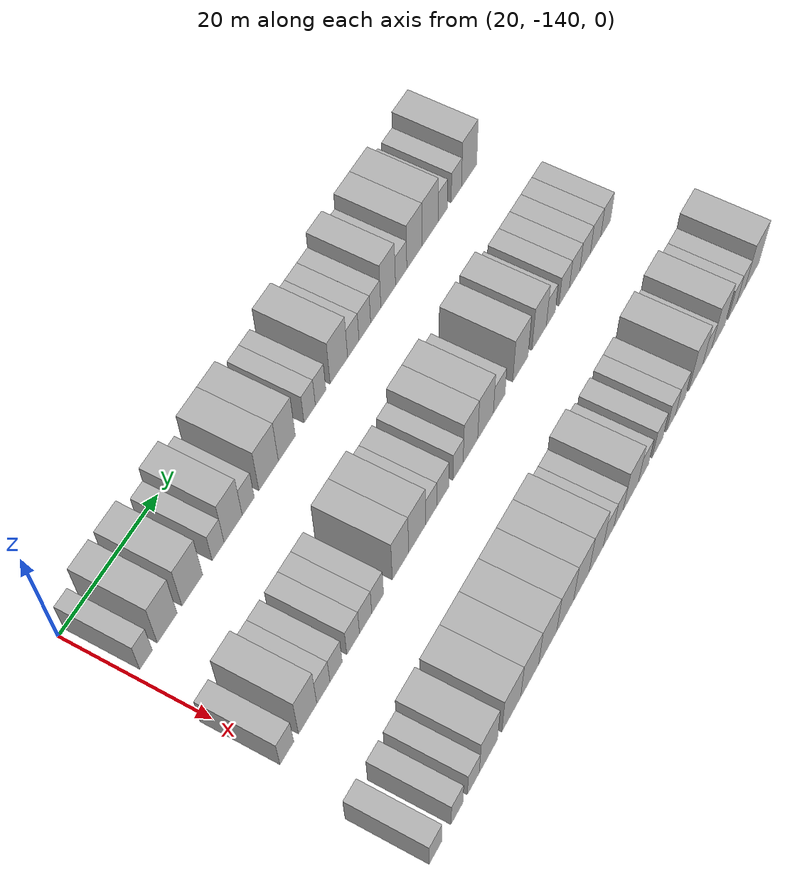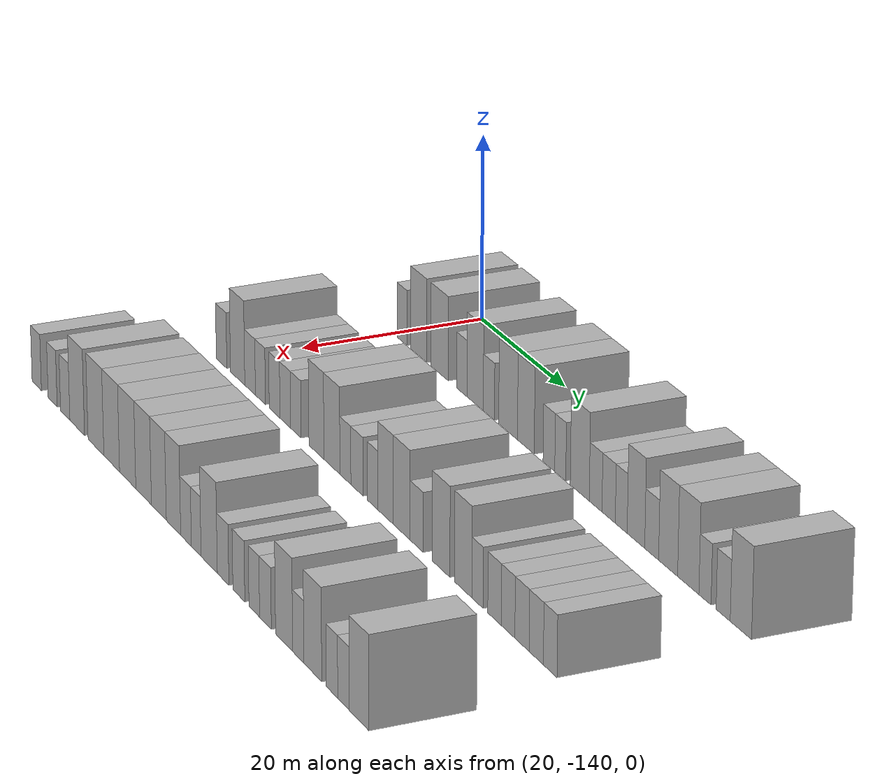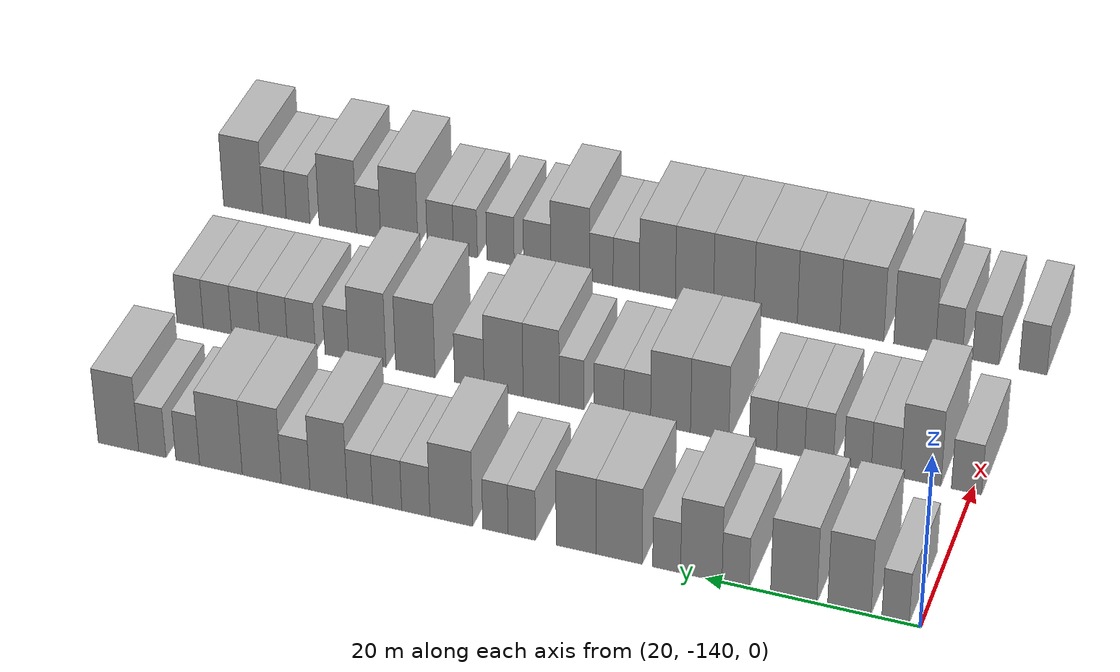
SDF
<sdf version="1.6">
 <world name="default">
  <model name="building_25">
   <static>1</static>
   <pose>25.0000 -137.6886 0 0.000000 0.000000 0.000000</pose>
   <link name="link">
    <pose>0 0 3.00 0 0 0</pose>
    <collision name="collision"><geometry><box><size>10.0000 2.5201 6.0000</size></box></geometry></collision>
    <visual name="visual">
     <cast_shadows>0</cast_shadows>
     <geometry><box><size>10.0000 2.5201 6.0000</size></box></geometry>
     <material>
      <script>
       <uri>model://HANNAS_wall/materials/scripts</uri>
       <uri>model://HANNAS_wall/materials/textures</uri>
       <name>vrc/HANNAS_wall</name>
      </script>
     </material>
    </visual>
   </link>
  </model>
  <model name="building_26">
   <static>1</static>
   <pose>25.0000 -133.4198 0 0.000000 0.000000 0.000000</pose>
   <link name="link">
    <pose>0 0 4.50 0 0 0</pose>
    <collision name="collision"><geometry><box><size>10.0000 4.0176 9.0000</size></box></geometry></collision>
    <visual name="visual">
     <cast_shadows>0</cast_shadows>
     <geometry><box><size>10.0000 4.0176 9.0000</size></box></geometry>
     <material>
      <script>
       <uri>model://HANNAS_wall/materials/scripts</uri>
       <uri>model://HANNAS_wall/materials/textures</uri>
       <name>vrc/HANNAS_wall</name>
      </script>
     </material>
    </visual>
   </link>
  </model>
  <model name="building_27">
   <static>1</static>
   <pose>25.0000 -128.2503 0 0.000000 0.000000 0.000000</pose>
   <link name="link">
    <pose>0 0 4.50 0 0 0</pose>
    <collision name="collision"><geometry><box><size>10.0000 4.3213 9.0000</size></box></geometry></collision>
    <visual name="visual">
     <cast_shadows>0</cast_shadows>
     <geometry><box><size>10.0000 4.3213 9.0000</size></box></geometry>
     <material>
      <script>
       <uri>model://HANNAS_wall/materials/scripts</uri>
       <uri>model://HANNAS_wall/materials/textures</uri>
       <name>vrc/HANNAS_wall</name>
      </script>
     </material>
    </visual>
   </link>
  </model>
  <model name="building_28">
   <static>1</static>
   <pose>25.0000 -122.8109 0 0.000000 0.000000 0.000000</pose>
   <link name="link">
    <pose>0 0 3.00 0 0 0</pose>
    <collision name="collision"><geometry><box><size>10.0000 2.5574 6.0000</size></box></geometry></collision>
    <visual name="visual">
     <cast_shadows>0</cast_shadows>
     <geometry><box><size>10.0000 2.5574 6.0000</size></box></geometry>
     <material>
      <script>
       <uri>model://HANNAS_wall/materials/scripts</uri>
       <uri>model://HANNAS_wall/materials/textures</uri>
       <name>vrc/HANNAS_wall</name>
      </script>
     </material>
    </visual>
   </link>
  </model>
  <model name="building_29">
   <static>1</static>
   <pose>25.0000 -119.5761 0 0.000000 0.000000 0.000000</pose>
   <link name="link">
    <pose>0 0 4.50 0 0 0</pose>
    <collision name="collision"><geometry><box><size>10.0000 3.9122 9.0000</size></box></geometry></collision>
    <visual name="visual">
     <cast_shadows>0</cast_shadows>
     <geometry><box><size>10.0000 3.9122 9.0000</size></box></geometry>
     <material>
      <script>
       <uri>model://HANNAS_wall/materials/scripts</uri>
       <uri>model://HANNAS_wall/materials/textures</uri>
       <name>vrc/HANNAS_wall</name>
      </script>
     </material>
    </visual>
   </link>
  </model>
  <model name="building_30">
   <static>1</static>
   <pose>25.0000 -116.2963 0 0.000000 0.000000 0.000000</pose>
   <link name="link">
    <pose>0 0 3.00 0 0 0</pose>
    <collision name="collision"><geometry><box><size>10.0000 2.6474 6.0000</size></box></geometry></collision>
    <visual name="visual">
     <cast_shadows>0</cast_shadows>
     <geometry><box><size>10.0000 2.6474 6.0000</size></box></geometry>
     <material>
      <script>
       <uri>model://HANNAS_wall/materials/scripts</uri>
       <uri>model://HANNAS_wall/materials/textures</uri>
       <name>vrc/HANNAS_wall</name>
      </script>
     </material>
    </visual>
   </link>
  </model>
  <model name="building_31">
   <static>1</static>
   <pose>25.0000 -111.7886 0 0.000000 0.000000 0.000000</pose>
   <link name="link">
    <pose>0 0 4.50 0 0 0</pose>
    <collision name="collision"><geometry><box><size>10.0000 4.3680 9.0000</size></box></geometry></collision>
    <visual name="visual">
     <cast_shadows>0</cast_shadows>
     <geometry><box><size>10.0000 4.3680 9.0000</size></box></geometry>
     <material>
      <script>
       <uri>model://HANNAS_wall/materials/scripts</uri>
       <uri>model://HANNAS_wall/materials/textures</uri>
       <name>vrc/HANNAS_wall</name>
      </script>
     </material>
    </visual>
   </link>
  </model>
  <model name="building_32">
   <static>1</static>
   <pose>25.0000 -107.6757 0 0.000000 0.000000 0.000000</pose>
   <link name="link">
    <pose>0 0 4.50 0 0 0</pose>
    <collision name="collision"><geometry><box><size>10.0000 3.8577 9.0000</size></box></geometry></collision>
    <visual name="visual">
     <cast_shadows>0</cast_shadows>
     <geometry><box><size>10.0000 3.8577 9.0000</size></box></geometry>
     <material>
      <script>
       <uri>model://HANNAS_wall/materials/scripts</uri>
       <uri>model://HANNAS_wall/materials/textures</uri>
       <name>vrc/HANNAS_wall</name>
      </script>
     </material>
    </visual>
   </link>
  </model>
  <model name="building_33">
   <static>1</static>
   <pose>25.0000 -102.4231 0 0.000000 0.000000 0.000000</pose>
   <link name="link">
    <pose>0 0 3.00 0 0 0</pose>
    <collision name="collision"><geometry><box><size>10.0000 2.6474 6.0000</size></box></geometry></collision>
    <visual name="visual">
     <cast_shadows>0</cast_shadows>
     <geometry><box><size>10.0000 2.6474 6.0000</size></box></geometry>
     <material>
      <script>
       <uri>model://HANNAS_wall/materials/scripts</uri>
       <uri>model://HANNAS_wall/materials/textures</uri>
       <name>vrc/HANNAS_wall</name>
      </script>
     </material>
    </visual>
   </link>
  </model>
  <model name="building_34">
   <static>1</static>
   <pose>25.0000 -99.8691 0 0.000000 0.000000 0.000000</pose>
   <link name="link">
    <pose>0 0 3.00 0 0 0</pose>
    <collision name="collision"><geometry><box><size>10.0000 2.4607 6.0000</size></box></geometry></collision>
    <visual name="visual">
     <cast_shadows>0</cast_shadows>
     <geometry><box><size>10.0000 2.4607 6.0000</size></box></geometry>
     <material>
      <script>
       <uri>model://HANNAS_wall/materials/scripts</uri>
       <uri>model://HANNAS_wall/materials/textures</uri>
       <name>vrc/HANNAS_wall</name>
      </script>
     </material>
    </visual>
   </link>
  </model>
  <model name="building_35">
   <static>1</static>
   <pose>25.0000 -95.5506 0 0.000000 0.000000 0.000000</pose>
   <link name="link">
    <pose>0 0 4.50 0 0 0</pose>
    <collision name="collision"><geometry><box><size>10.0000 4.1762 9.0000</size></box></geometry></collision>
    <visual name="visual">
     <cast_shadows>0</cast_shadows>
     <geometry><box><size>10.0000 4.1762 9.0000</size></box></geometry>
     <material>
      <script>
       <uri>model://HANNAS_wall/materials/scripts</uri>
       <uri>model://HANNAS_wall/materials/textures</uri>
       <name>vrc/HANNAS_wall</name>
      </script>
     </material>
    </visual>
   </link>
  </model>
  <model name="building_36">
   <static>1</static>
   <pose>25.0000 -92.0806 0 0.000000 0.000000 0.000000</pose>
   <link name="link">
    <pose>0 0 3.00 0 0 0</pose>
    <collision name="collision"><geometry><box><size>10.0000 2.7638 6.0000</size></box></geometry></collision>
    <visual name="visual">
     <cast_shadows>0</cast_shadows>
     <geometry><box><size>10.0000 2.7638 6.0000</size></box></geometry>
     <material>
      <script>
       <uri>model://HANNAS_wall/materials/scripts</uri>
       <uri>model://HANNAS_wall/materials/textures</uri>
       <name>vrc/HANNAS_wall</name>
      </script>
     </material>
    </visual>
   </link>
  </model>
  <model name="building_37">
   <static>1</static>
   <pose>25.0000 -89.2654 0 0.000000 0.000000 0.000000</pose>
   <link name="link">
    <pose>0 0 3.00 0 0 0</pose>
    <collision name="collision"><geometry><box><size>10.0000 2.8667 6.0000</size></box></geometry></collision>
    <visual name="visual">
     <cast_shadows>0</cast_shadows>
     <geometry><box><size>10.0000 2.8667 6.0000</size></box></geometry>
     <material>
      <script>
       <uri>model://HANNAS_wall/materials/scripts</uri>
       <uri>model://HANNAS_wall/materials/textures</uri>
       <name>vrc/HANNAS_wall</name>
      </script>
     </material>
    </visual>
   </link>
  </model>
  <model name="building_38">
   <static>1</static>
   <pose>25.0000 -86.5704 0 0.000000 0.000000 0.000000</pose>
   <link name="link">
    <pose>0 0 3.00 0 0 0</pose>
    <collision name="collision"><geometry><box><size>10.0000 2.5232 6.0000</size></box></geometry></collision>
    <visual name="visual">
     <cast_shadows>0</cast_shadows>
     <geometry><box><size>10.0000 2.5232 6.0000</size></box></geometry>
     <material>
      <script>
       <uri>model://HANNAS_wall/materials/scripts</uri>
       <uri>model://HANNAS_wall/materials/textures</uri>
       <name>vrc/HANNAS_wall</name>
      </script>
     </material>
    </visual>
   </link>
  </model>
  <model name="building_39">
   <static>1</static>
   <pose>25.0000 -83.4620 0 0.000000 0.000000 0.000000</pose>
   <link name="link">
    <pose>0 0 4.50 0 0 0</pose>
    <collision name="collision"><geometry><box><size>10.0000 3.6937 9.0000</size></box></geometry></collision>
    <visual name="visual">
     <cast_shadows>0</cast_shadows>
     <geometry><box><size>10.0000 3.6937 9.0000</size></box></geometry>
     <material>
      <script>
       <uri>model://HANNAS_wall/materials/scripts</uri>
       <uri>model://HANNAS_wall/materials/textures</uri>
       <name>vrc/HANNAS_wall</name>
      </script>
     </material>
    </visual>
   </link>
  </model>
  <model name="building_40">
   <static>1</static>
   <pose>25.0000 -80.1748 0 0.000000 0.000000 0.000000</pose>
   <link name="link">
    <pose>0 0 3.00 0 0 0</pose>
    <collision name="collision"><geometry><box><size>10.0000 2.8808 6.0000</size></box></geometry></collision>
    <visual name="visual">
     <cast_shadows>0</cast_shadows>
     <geometry><box><size>10.0000 2.8808 6.0000</size></box></geometry>
     <material>
      <script>
       <uri>model://HANNAS_wall/materials/scripts</uri>
       <uri>model://HANNAS_wall/materials/textures</uri>
       <name>vrc/HANNAS_wall</name>
      </script>
     </material>
    </visual>
   </link>
  </model>
  <model name="building_41">
   <static>1</static>
   <pose>25.0000 -76.7838 0 0.000000 0.000000 0.000000</pose>
   <link name="link">
    <pose>0 0 4.50 0 0 0</pose>
    <collision name="collision"><geometry><box><size>10.0000 3.9011 9.0000</size></box></geometry></collision>
    <visual name="visual">
     <cast_shadows>0</cast_shadows>
     <geometry><box><size>10.0000 3.9011 9.0000</size></box></geometry>
     <material>
      <script>
       <uri>model://HANNAS_wall/materials/scripts</uri>
       <uri>model://HANNAS_wall/materials/textures</uri>
       <name>vrc/HANNAS_wall</name>
      </script>
     </material>
    </visual>
   </link>
  </model>
  <model name="building_42">
   <static>1</static>
   <pose>25.0000 -72.6837 0 0.000000 0.000000 0.000000</pose>
   <link name="link">
    <pose>0 0 4.50 0 0 0</pose>
    <collision name="collision"><geometry><box><size>10.0000 4.2991 9.0000</size></box></geometry></collision>
    <visual name="visual">
     <cast_shadows>0</cast_shadows>
     <geometry><box><size>10.0000 4.2991 9.0000</size></box></geometry>
     <material>
      <script>
       <uri>model://HANNAS_wall/materials/scripts</uri>
       <uri>model://HANNAS_wall/materials/textures</uri>
       <name>vrc/HANNAS_wall</name>
      </script>
     </material>
    </visual>
   </link>
  </model>
  <model name="building_43">
   <static>1</static>
   <pose>25.0000 -69.3244 0 0.000000 0.000000 0.000000</pose>
   <link name="link">
    <pose>0 0 3.00 0 0 0</pose>
    <collision name="collision"><geometry><box><size>10.0000 2.4194 6.0000</size></box></geometry></collision>
    <visual name="visual">
     <cast_shadows>0</cast_shadows>
     <geometry><box><size>10.0000 2.4194 6.0000</size></box></geometry>
     <material>
      <script>
       <uri>model://HANNAS_wall/materials/scripts</uri>
       <uri>model://HANNAS_wall/materials/textures</uri>
       <name>vrc/HANNAS_wall</name>
      </script>
     </material>
    </visual>
   </link>
  </model>
  <model name="building_44">
   <static>1</static>
   <pose>25.0000 -65.7298 0 0.000000 0.000000 0.000000</pose>
   <link name="link">
    <pose>0 0 3.00 0 0 0</pose>
    <collision name="collision"><geometry><box><size>10.0000 2.7699 6.0000</size></box></geometry></collision>
    <visual name="visual">
     <cast_shadows>0</cast_shadows>
     <geometry><box><size>10.0000 2.7699 6.0000</size></box></geometry>
     <material>
      <script>
       <uri>model://HANNAS_wall/materials/scripts</uri>
       <uri>model://HANNAS_wall/materials/textures</uri>
       <name>vrc/HANNAS_wall</name>
      </script>
     </material>
    </visual>
   </link>
  </model>
  <model name="building_45">
   <static>1</static>
   <pose>25.0000 -62.2742 0 0.000000 0.000000 0.000000</pose>
   <link name="link">
    <pose>0 0 4.50 0 0 0</pose>
    <collision name="collision"><geometry><box><size>10.0000 4.1415 9.0000</size></box></geometry></collision>
    <visual name="visual">
     <cast_shadows>0</cast_shadows>
     <geometry><box><size>10.0000 4.1415 9.0000</size></box></geometry>
     <material>
      <script>
       <uri>model://HANNAS_wall/materials/scripts</uri>
       <uri>model://HANNAS_wall/materials/textures</uri>
       <name>vrc/HANNAS_wall</name>
      </script>
     </material>
    </visual>
   </link>
  </model>
  <model name="building_138">
   <static>1</static>
   <pose>44.0000 -139.4248 0 0.000000 0.000000 0.000000</pose>
   <link name="link">
    <pose>0 0 3.00 0 0 0</pose>
    <collision name="collision"><geometry><box><size>10.0000 2.8710 6.0000</size></box></geometry></collision>
    <visual name="visual">
     <cast_shadows>0</cast_shadows>
     <geometry><box><size>10.0000 2.8710 6.0000</size></box></geometry>
     <material>
      <script>
       <uri>model://HANNAS_wall/materials/scripts</uri>
       <uri>model://HANNAS_wall/materials/textures</uri>
       <name>vrc/HANNAS_wall</name>
      </script>
     </material>
    </visual>
   </link>
  </model>
  <model name="building_139">
   <static>1</static>
   <pose>44.0000 -135.0571 0 0.000000 0.000000 0.000000</pose>
   <link name="link">
    <pose>0 0 4.50 0 0 0</pose>
    <collision name="collision"><geometry><box><size>10.0000 3.8643 9.0000</size></box></geometry></collision>
    <visual name="visual">
     <cast_shadows>0</cast_shadows>
     <geometry><box><size>10.0000 3.8643 9.0000</size></box></geometry>
     <material>
      <script>
       <uri>model://HANNAS_wall/materials/scripts</uri>
       <uri>model://HANNAS_wall/materials/textures</uri>
       <name>vrc/HANNAS_wall</name>
      </script>
     </material>
    </visual>
   </link>
  </model>
  <model name="building_140">
   <static>1</static>
   <pose>44.0000 -131.7102 0 0.000000 0.000000 0.000000</pose>
   <link name="link">
    <pose>0 0 3.00 0 0 0</pose>
    <collision name="collision"><geometry><box><size>10.0000 2.8294 6.0000</size></box></geometry></collision>
    <visual name="visual">
     <cast_shadows>0</cast_shadows>
     <geometry><box><size>10.0000 2.8294 6.0000</size></box></geometry>
     <material>
      <script>
       <uri>model://HANNAS_wall/materials/scripts</uri>
       <uri>model://HANNAS_wall/materials/textures</uri>
       <name>vrc/HANNAS_wall</name>
      </script>
     </material>
    </visual>
   </link>
  </model>
  <model name="building_141">
   <static>1</static>
   <pose>44.0000 -128.9703 0 0.000000 0.000000 0.000000</pose>
   <link name="link">
    <pose>0 0 3.00 0 0 0</pose>
    <collision name="collision"><geometry><box><size>10.0000 2.6505 6.0000</size></box></geometry></collision>
    <visual name="visual">
     <cast_shadows>0</cast_shadows>
     <geometry><box><size>10.0000 2.6505 6.0000</size></box></geometry>
     <material>
      <script>
       <uri>model://HANNAS_wall/materials/scripts</uri>
       <uri>model://HANNAS_wall/materials/textures</uri>
       <name>vrc/HANNAS_wall</name>
      </script>
     </material>
    </visual>
   </link>
  </model>
  <model name="building_142">
   <static>1</static>
   <pose>44.0000 -125.2387 0 0.000000 0.000000 0.000000</pose>
   <link name="link">
    <pose>0 0 3.00 0 0 0</pose>
    <collision name="collision"><geometry><box><size>10.0000 2.8126 6.0000</size></box></geometry></collision>
    <visual name="visual">
     <cast_shadows>0</cast_shadows>
     <geometry><box><size>10.0000 2.8126 6.0000</size></box></geometry>
     <material>
      <script>
       <uri>model://HANNAS_wall/materials/scripts</uri>
       <uri>model://HANNAS_wall/materials/textures</uri>
       <name>vrc/HANNAS_wall</name>
      </script>
     </material>
    </visual>
   </link>
  </model>
  <model name="building_143">
   <static>1</static>
   <pose>44.0000 -122.4614 0 0.000000 0.000000 0.000000</pose>
   <link name="link">
    <pose>0 0 3.00 0 0 0</pose>
    <collision name="collision"><geometry><box><size>10.0000 2.7420 6.0000</size></box></geometry></collision>
    <visual name="visual">
     <cast_shadows>0</cast_shadows>
     <geometry><box><size>10.0000 2.7420 6.0000</size></box></geometry>
     <material>
      <script>
       <uri>model://HANNAS_wall/materials/scripts</uri>
       <uri>model://HANNAS_wall/materials/textures</uri>
       <name>vrc/HANNAS_wall</name>
      </script>
     </material>
    </visual>
   </link>
  </model>
  <model name="building_144">
   <static>1</static>
   <pose>44.0000 -119.7532 0 0.000000 0.000000 0.000000</pose>
   <link name="link">
    <pose>0 0 3.00 0 0 0</pose>
    <collision name="collision"><geometry><box><size>10.0000 2.6745 6.0000</size></box></geometry></collision>
    <visual name="visual">
     <cast_shadows>0</cast_shadows>
     <geometry><box><size>10.0000 2.6745 6.0000</size></box></geometry>
     <material>
      <script>
       <uri>model://HANNAS_wall/materials/scripts</uri>
       <uri>model://HANNAS_wall/materials/textures</uri>
       <name>vrc/HANNAS_wall</name>
      </script>
     </material>
    </visual>
   </link>
  </model>
  <model name="building_145">
   <static>1</static>
   <pose>44.0000 -114.5247 0 0.000000 0.000000 0.000000</pose>
   <link name="link">
    <pose>0 0 4.50 0 0 0</pose>
    <collision name="collision"><geometry><box><size>10.0000 3.7825 9.0000</size></box></geometry></collision>
    <visual name="visual">
     <cast_shadows>0</cast_shadows>
     <geometry><box><size>10.0000 3.7825 9.0000</size></box></geometry>
     <material>
      <script>
       <uri>model://HANNAS_wall/materials/scripts</uri>
       <uri>model://HANNAS_wall/materials/textures</uri>
       <name>vrc/HANNAS_wall</name>
      </script>
     </material>
    </visual>
   </link>
  </model>
  <model name="building_146">
   <static>1</static>
   <pose>44.0000 -110.6580 0 0.000000 0.000000 0.000000</pose>
   <link name="link">
    <pose>0 0 4.50 0 0 0</pose>
    <collision name="collision"><geometry><box><size>10.0000 3.9508 9.0000</size></box></geometry></collision>
    <visual name="visual">
     <cast_shadows>0</cast_shadows>
     <geometry><box><size>10.0000 3.9508 9.0000</size></box></geometry>
     <material>
      <script>
       <uri>model://HANNAS_wall/materials/scripts</uri>
       <uri>model://HANNAS_wall/materials/textures</uri>
       <name>vrc/HANNAS_wall</name>
      </script>
     </material>
    </visual>
   </link>
  </model>
  <model name="building_147">
   <static>1</static>
   <pose>44.0000 -107.3472 0 0.000000 0.000000 0.000000</pose>
   <link name="link">
    <pose>0 0 3.00 0 0 0</pose>
    <collision name="collision"><geometry><box><size>10.0000 2.6706 6.0000</size></box></geometry></collision>
    <visual name="visual">
     <cast_shadows>0</cast_shadows>
     <geometry><box><size>10.0000 2.6706 6.0000</size></box></geometry>
     <material>
      <script>
       <uri>model://HANNAS_wall/materials/scripts</uri>
       <uri>model://HANNAS_wall/materials/textures</uri>
       <name>vrc/HANNAS_wall</name>
      </script>
     </material>
    </visual>
   </link>
  </model>
  <model name="building_148">
   <static>1</static>
   <pose>44.0000 -104.5324 0 0.000000 0.000000 0.000000</pose>
   <link name="link">
    <pose>0 0 3.00 0 0 0</pose>
    <collision name="collision"><geometry><box><size>10.0000 2.9590 6.0000</size></box></geometry></collision>
    <visual name="visual">
     <cast_shadows>0</cast_shadows>
     <geometry><box><size>10.0000 2.9590 6.0000</size></box></geometry>
     <material>
      <script>
       <uri>model://HANNAS_wall/materials/scripts</uri>
       <uri>model://HANNAS_wall/materials/textures</uri>
       <name>vrc/HANNAS_wall</name>
      </script>
     </material>
    </visual>
   </link>
  </model>
  <model name="building_149">
   <static>1</static>
   <pose>44.0000 -100.8067 0 0.000000 0.000000 0.000000</pose>
   <link name="link">
    <pose>0 0 3.00 0 0 0</pose>
    <collision name="collision"><geometry><box><size>10.0000 2.4924 6.0000</size></box></geometry></collision>
    <visual name="visual">
     <cast_shadows>0</cast_shadows>
     <geometry><box><size>10.0000 2.4924 6.0000</size></box></geometry>
     <material>
      <script>
       <uri>model://HANNAS_wall/materials/scripts</uri>
       <uri>model://HANNAS_wall/materials/textures</uri>
       <name>vrc/HANNAS_wall</name>
      </script>
     </material>
    </visual>
   </link>
  </model>
  <model name="building_150">
   <static>1</static>
   <pose>44.0000 -97.7367 0 0.000000 0.000000 0.000000</pose>
   <link name="link">
    <pose>0 0 4.50 0 0 0</pose>
    <collision name="collision"><geometry><box><size>10.0000 3.6475 9.0000</size></box></geometry></collision>
    <visual name="visual">
     <cast_shadows>0</cast_shadows>
     <geometry><box><size>10.0000 3.6475 9.0000</size></box></geometry>
     <material>
      <script>
       <uri>model://HANNAS_wall/materials/scripts</uri>
       <uri>model://HANNAS_wall/materials/textures</uri>
       <name>vrc/HANNAS_wall</name>
      </script>
     </material>
    </visual>
   </link>
  </model>
  <model name="building_151">
   <static>1</static>
   <pose>44.0000 -93.9317 0 0.000000 0.000000 0.000000</pose>
   <link name="link">
    <pose>0 0 4.50 0 0 0</pose>
    <collision name="collision"><geometry><box><size>10.0000 3.9625 9.0000</size></box></geometry></collision>
    <visual name="visual">
     <cast_shadows>0</cast_shadows>
     <geometry><box><size>10.0000 3.9625 9.0000</size></box></geometry>
     <material>
      <script>
       <uri>model://HANNAS_wall/materials/scripts</uri>
       <uri>model://HANNAS_wall/materials/textures</uri>
       <name>vrc/HANNAS_wall</name>
      </script>
     </material>
    </visual>
   </link>
  </model>
  <model name="building_152">
   <static>1</static>
   <pose>44.0000 -90.4508 0 0.000000 0.000000 0.000000</pose>
   <link name="link">
    <pose>0 0 3.00 0 0 0</pose>
    <collision name="collision"><geometry><box><size>10.0000 2.9993 6.0000</size></box></geometry></collision>
    <visual name="visual">
     <cast_shadows>0</cast_shadows>
     <geometry><box><size>10.0000 2.9993 6.0000</size></box></geometry>
     <material>
      <script>
       <uri>model://HANNAS_wall/materials/scripts</uri>
       <uri>model://HANNAS_wall/materials/textures</uri>
       <name>vrc/HANNAS_wall</name>
      </script>
     </material>
    </visual>
   </link>
  </model>
  <model name="building_153">
   <static>1</static>
   <pose>44.0000 -84.9363 0 0.000000 0.000000 0.000000</pose>
   <link name="link">
    <pose>0 0 4.50 0 0 0</pose>
    <collision name="collision"><geometry><box><size>10.0000 4.0298 9.0000</size></box></geometry></collision>
    <visual name="visual">
     <cast_shadows>0</cast_shadows>
     <geometry><box><size>10.0000 4.0298 9.0000</size></box></geometry>
     <material>
      <script>
       <uri>model://HANNAS_wall/materials/scripts</uri>
       <uri>model://HANNAS_wall/materials/textures</uri>
       <name>vrc/HANNAS_wall</name>
      </script>
     </material>
    </visual>
   </link>
  </model>
  <model name="building_154">
   <static>1</static>
   <pose>44.0000 -79.9927 0 0.000000 0.000000 0.000000</pose>
   <link name="link">
    <pose>0 0 4.50 0 0 0</pose>
    <collision name="collision"><geometry><box><size>10.0000 3.8574 9.0000</size></box></geometry></collision>
    <visual name="visual">
     <cast_shadows>0</cast_shadows>
     <geometry><box><size>10.0000 3.8574 9.0000</size></box></geometry>
     <material>
      <script>
       <uri>model://HANNAS_wall/materials/scripts</uri>
       <uri>model://HANNAS_wall/materials/textures</uri>
       <name>vrc/HANNAS_wall</name>
      </script>
     </material>
    </visual>
   </link>
  </model>
  <model name="building_155">
   <static>1</static>
   <pose>44.0000 -76.8361 0 0.000000 0.000000 0.000000</pose>
   <link name="link">
    <pose>0 0 3.00 0 0 0</pose>
    <collision name="collision"><geometry><box><size>10.0000 2.4556 6.0000</size></box></geometry></collision>
    <visual name="visual">
     <cast_shadows>0</cast_shadows>
     <geometry><box><size>10.0000 2.4556 6.0000</size></box></geometry>
     <material>
      <script>
       <uri>model://HANNAS_wall/materials/scripts</uri>
       <uri>model://HANNAS_wall/materials/textures</uri>
       <name>vrc/HANNAS_wall</name>
      </script>
     </material>
    </visual>
   </link>
  </model>
  <model name="building_156">
   <static>1</static>
   <pose>44.0000 -73.1545 0 0.000000 0.000000 0.000000</pose>
   <link name="link">
    <pose>0 0 3.00 0 0 0</pose>
    <collision name="collision"><geometry><box><size>10.0000 2.9076 6.0000</size></box></geometry></collision>
    <visual name="visual">
     <cast_shadows>0</cast_shadows>
     <geometry><box><size>10.0000 2.9076 6.0000</size></box></geometry>
     <material>
      <script>
       <uri>model://HANNAS_wall/materials/scripts</uri>
       <uri>model://HANNAS_wall/materials/textures</uri>
       <name>vrc/HANNAS_wall</name>
      </script>
     </material>
    </visual>
   </link>
  </model>
  <model name="building_157">
   <static>1</static>
   <pose>44.0000 -70.2558 0 0.000000 0.000000 0.000000</pose>
   <link name="link">
    <pose>0 0 3.00 0 0 0</pose>
    <collision name="collision"><geometry><box><size>10.0000 2.8898 6.0000</size></box></geometry></collision>
    <visual name="visual">
     <cast_shadows>0</cast_shadows>
     <geometry><box><size>10.0000 2.8898 6.0000</size></box></geometry>
     <material>
      <script>
       <uri>model://HANNAS_wall/materials/scripts</uri>
       <uri>model://HANNAS_wall/materials/textures</uri>
       <name>vrc/HANNAS_wall</name>
      </script>
     </material>
    </visual>
   </link>
  </model>
  <model name="building_158">
   <static>1</static>
   <pose>44.0000 -67.3197 0 0.000000 0.000000 0.000000</pose>
   <link name="link">
    <pose>0 0 3.00 0 0 0</pose>
    <collision name="collision"><geometry><box><size>10.0000 2.9825 6.0000</size></box></geometry></collision>
    <visual name="visual">
     <cast_shadows>0</cast_shadows>
     <geometry><box><size>10.0000 2.9825 6.0000</size></box></geometry>
     <material>
      <script>
       <uri>model://HANNAS_wall/materials/scripts</uri>
       <uri>model://HANNAS_wall/materials/textures</uri>
       <name>vrc/HANNAS_wall</name>
      </script>
     </material>
    </visual>
   </link>
  </model>
  <model name="building_159">
   <static>1</static>
   <pose>44.0000 -64.3424 0 0.000000 0.000000 0.000000</pose>
   <link name="link">
    <pose>0 0 3.00 0 0 0</pose>
    <collision name="collision"><geometry><box><size>10.0000 2.9720 6.0000</size></box></geometry></collision>
    <visual name="visual">
     <cast_shadows>0</cast_shadows>
     <geometry><box><size>10.0000 2.9720 6.0000</size></box></geometry>
     <material>
      <script>
       <uri>model://HANNAS_wall/materials/scripts</uri>
       <uri>model://HANNAS_wall/materials/textures</uri>
       <name>vrc/HANNAS_wall</name>
      </script>
     </material>
    </visual>
   </link>
  </model>
  <model name="building_160">
   <static>1</static>
   <pose>44.0000 -61.4540 0 0.000000 0.000000 0.000000</pose>
   <link name="link">
    <pose>0 0 3.00 0 0 0</pose>
    <collision name="collision"><geometry><box><size>10.0000 2.8049 6.0000</size></box></geometry></collision>
    <visual name="visual">
     <cast_shadows>0</cast_shadows>
     <geometry><box><size>10.0000 2.8049 6.0000</size></box></geometry>
     <material>
      <script>
       <uri>model://HANNAS_wall/materials/scripts</uri>
       <uri>model://HANNAS_wall/materials/textures</uri>
       <name>vrc/HANNAS_wall</name>
      </script>
     </material>
    </visual>
   </link>
  </model>
  <model name="building_244">
   <static>1</static>
   <pose>63.0000 -141.2388 0 0.000000 0.000000 0.000000</pose>
   <link name="link">
    <pose>0 0 3.00 0 0 0</pose>
    <collision name="collision"><geometry><box><size>10.0000 2.7454 6.0000</size></box></geometry></collision>
    <visual name="visual">
     <cast_shadows>0</cast_shadows>
     <geometry><box><size>10.0000 2.7454 6.0000</size></box></geometry>
     <material>
      <script>
       <uri>model://HANNAS_wall/materials/scripts</uri>
       <uri>model://HANNAS_wall/materials/textures</uri>
       <name>vrc/HANNAS_wall</name>
      </script>
     </material>
    </visual>
   </link>
  </model>
  <model name="building_245">
   <static>1</static>
   <pose>63.0000 -136.5547 0 0.000000 0.000000 0.000000</pose>
   <link name="link">
    <pose>0 0 3.00 0 0 0</pose>
    <collision name="collision"><geometry><box><size>10.0000 2.6227 6.0000</size></box></geometry></collision>
    <visual name="visual">
     <cast_shadows>0</cast_shadows>
     <geometry><box><size>10.0000 2.6227 6.0000</size></box></geometry>
     <material>
      <script>
       <uri>model://HANNAS_wall/materials/scripts</uri>
       <uri>model://HANNAS_wall/materials/textures</uri>
       <name>vrc/HANNAS_wall</name>
      </script>
     </material>
    </visual>
   </link>
  </model>
  <model name="building_246">
   <static>1</static>
   <pose>63.0000 -132.9059 0 0.000000 0.000000 0.000000</pose>
   <link name="link">
    <pose>0 0 3.00 0 0 0</pose>
    <collision name="collision"><geometry><box><size>10.0000 2.6748 6.0000</size></box></geometry></collision>
    <visual name="visual">
     <cast_shadows>0</cast_shadows>
     <geometry><box><size>10.0000 2.6748 6.0000</size></box></geometry>
     <material>
      <script>
       <uri>model://HANNAS_wall/materials/scripts</uri>
       <uri>model://HANNAS_wall/materials/textures</uri>
       <name>vrc/HANNAS_wall</name>
      </script>
     </material>
    </visual>
   </link>
  </model>
  <model name="building_247">
   <static>1</static>
   <pose>63.0000 -129.4775 0 0.000000 0.000000 0.000000</pose>
   <link name="link">
    <pose>0 0 4.50 0 0 0</pose>
    <collision name="collision"><geometry><box><size>10.0000 4.1821 9.0000</size></box></geometry></collision>
    <visual name="visual">
     <cast_shadows>0</cast_shadows>
     <geometry><box><size>10.0000 4.1821 9.0000</size></box></geometry>
     <material>
      <script>
       <uri>model://HANNAS_wall/materials/scripts</uri>
       <uri>model://HANNAS_wall/materials/textures</uri>
       <name>vrc/HANNAS_wall</name>
      </script>
     </material>
    </visual>
   </link>
  </model>
  <model name="building_248">
   <static>1</static>
   <pose>63.0000 -124.1791 0 0.000000 0.000000 0.000000</pose>
   <link name="link">
    <pose>0 0 4.50 0 0 0</pose>
    <collision name="collision"><geometry><box><size>10.0000 4.4146 9.0000</size></box></geometry></collision>
    <visual name="visual">
     <cast_shadows>0</cast_shadows>
     <geometry><box><size>10.0000 4.4146 9.0000</size></box></geometry>
     <material>
      <script>
       <uri>model://HANNAS_wall/materials/scripts</uri>
       <uri>model://HANNAS_wall/materials/textures</uri>
       <name>vrc/HANNAS_wall</name>
      </script>
     </material>
    </visual>
   </link>
  </model>
  <model name="building_249">
   <static>1</static>
   <pose>63.0000 -119.8088 0 0.000000 0.000000 0.000000</pose>
   <link name="link">
    <pose>0 0 4.50 0 0 0</pose>
    <collision name="collision"><geometry><box><size>10.0000 4.3260 9.0000</size></box></geometry></collision>
    <visual name="visual">
     <cast_shadows>0</cast_shadows>
     <geometry><box><size>10.0000 4.3260 9.0000</size></box></geometry>
     <material>
      <script>
       <uri>model://HANNAS_wall/materials/scripts</uri>
       <uri>model://HANNAS_wall/materials/textures</uri>
       <name>vrc/HANNAS_wall</name>
      </script>
     </material>
    </visual>
   </link>
  </model>
  <model name="building_250">
   <static>1</static>
   <pose>63.0000 -115.4445 0 0.000000 0.000000 0.000000</pose>
   <link name="link">
    <pose>0 0 4.50 0 0 0</pose>
    <collision name="collision"><geometry><box><size>10.0000 4.4024 9.0000</size></box></geometry></collision>
    <visual name="visual">
     <cast_shadows>0</cast_shadows>
     <geometry><box><size>10.0000 4.4024 9.0000</size></box></geometry>
     <material>
      <script>
       <uri>model://HANNAS_wall/materials/scripts</uri>
       <uri>model://HANNAS_wall/materials/textures</uri>
       <name>vrc/HANNAS_wall</name>
      </script>
     </material>
    </visual>
   </link>
  </model>
  <model name="building_251">
   <static>1</static>
   <pose>63.0000 -111.1569 0 0.000000 0.000000 0.000000</pose>
   <link name="link">
    <pose>0 0 4.50 0 0 0</pose>
    <collision name="collision"><geometry><box><size>10.0000 4.1729 9.0000</size></box></geometry></collision>
    <visual name="visual">
     <cast_shadows>0</cast_shadows>
     <geometry><box><size>10.0000 4.1729 9.0000</size></box></geometry>
     <material>
      <script>
       <uri>model://HANNAS_wall/materials/scripts</uri>
       <uri>model://HANNAS_wall/materials/textures</uri>
       <name>vrc/HANNAS_wall</name>
      </script>
     </material>
    </visual>
   </link>
  </model>
  <model name="building_252">
   <static>1</static>
   <pose>63.0000 -107.1127 0 0.000000 0.000000 0.000000</pose>
   <link name="link">
    <pose>0 0 4.50 0 0 0</pose>
    <collision name="collision"><geometry><box><size>10.0000 3.9156 9.0000</size></box></geometry></collision>
    <visual name="visual">
     <cast_shadows>0</cast_shadows>
     <geometry><box><size>10.0000 3.9156 9.0000</size></box></geometry>
     <material>
      <script>
       <uri>model://HANNAS_wall/materials/scripts</uri>
       <uri>model://HANNAS_wall/materials/textures</uri>
       <name>vrc/HANNAS_wall</name>
      </script>
     </material>
    </visual>
   </link>
  </model>
  <model name="building_253">
   <static>1</static>
   <pose>63.0000 -103.2949 0 0.000000 0.000000 0.000000</pose>
   <link name="link">
    <pose>0 0 4.50 0 0 0</pose>
    <collision name="collision"><geometry><box><size>10.0000 3.7199 9.0000</size></box></geometry></collision>
    <visual name="visual">
     <cast_shadows>0</cast_shadows>
     <geometry><box><size>10.0000 3.7199 9.0000</size></box></geometry>
     <material>
      <script>
       <uri>model://HANNAS_wall/materials/scripts</uri>
       <uri>model://HANNAS_wall/materials/textures</uri>
       <name>vrc/HANNAS_wall</name>
      </script>
     </material>
    </visual>
   </link>
  </model>
  <model name="building_254">
   <static>1</static>
   <pose>63.0000 -100.0650 0 0.000000 0.000000 0.000000</pose>
   <link name="link">
    <pose>0 0 3.00 0 0 0</pose>
    <collision name="collision"><geometry><box><size>10.0000 2.7399 6.0000</size></box></geometry></collision>
    <visual name="visual">
     <cast_shadows>0</cast_shadows>
     <geometry><box><size>10.0000 2.7399 6.0000</size></box></geometry>
     <material>
      <script>
       <uri>model://HANNAS_wall/materials/scripts</uri>
       <uri>model://HANNAS_wall/materials/textures</uri>
       <name>vrc/HANNAS_wall</name>
      </script>
     </material>
    </visual>
   </link>
  </model>
  <model name="building_255">
   <static>1</static>
   <pose>63.0000 -97.4696 0 0.000000 0.000000 0.000000</pose>
   <link name="link">
    <pose>0 0 3.00 0 0 0</pose>
    <collision name="collision"><geometry><box><size>10.0000 2.4508 6.0000</size></box></geometry></collision>
    <visual name="visual">
     <cast_shadows>0</cast_shadows>
     <geometry><box><size>10.0000 2.4508 6.0000</size></box></geometry>
     <material>
      <script>
       <uri>model://HANNAS_wall/materials/scripts</uri>
       <uri>model://HANNAS_wall/materials/textures</uri>
       <name>vrc/HANNAS_wall</name>
      </script>
     </material>
    </visual>
   </link>
  </model>
  <model name="building_256">
   <static>1</static>
   <pose>63.0000 -94.2086 0 0.000000 0.000000 0.000000</pose>
   <link name="link">
    <pose>0 0 4.50 0 0 0</pose>
    <collision name="collision"><geometry><box><size>10.0000 4.0713 9.0000</size></box></geometry></collision>
    <visual name="visual">
     <cast_shadows>0</cast_shadows>
     <geometry><box><size>10.0000 4.0713 9.0000</size></box></geometry>
     <material>
      <script>
       <uri>model://HANNAS_wall/materials/scripts</uri>
       <uri>model://HANNAS_wall/materials/textures</uri>
       <name>vrc/HANNAS_wall</name>
      </script>
     </material>
    </visual>
   </link>
  </model>
  <model name="building_257">
   <static>1</static>
   <pose>63.0000 -90.7525 0 0.000000 0.000000 0.000000</pose>
   <link name="link">
    <pose>0 0 3.00 0 0 0</pose>
    <collision name="collision"><geometry><box><size>10.0000 2.8409 6.0000</size></box></geometry></collision>
    <visual name="visual">
     <cast_shadows>0</cast_shadows>
     <geometry><box><size>10.0000 2.8409 6.0000</size></box></geometry>
     <material>
      <script>
       <uri>model://HANNAS_wall/materials/scripts</uri>
       <uri>model://HANNAS_wall/materials/textures</uri>
       <name>vrc/HANNAS_wall</name>
      </script>
     </material>
    </visual>
   </link>
  </model>
  <model name="building_258">
   <static>1</static>
   <pose>63.0000 -86.8843 0 0.000000 0.000000 0.000000</pose>
   <link name="link">
    <pose>0 0 3.00 0 0 0</pose>
    <collision name="collision"><geometry><box><size>10.0000 2.8954 6.0000</size></box></geometry></collision>
    <visual name="visual">
     <cast_shadows>0</cast_shadows>
     <geometry><box><size>10.0000 2.8954 6.0000</size></box></geometry>
     <material>
      <script>
       <uri>model://HANNAS_wall/materials/scripts</uri>
       <uri>model://HANNAS_wall/materials/textures</uri>
       <name>vrc/HANNAS_wall</name>
      </script>
     </material>
    </visual>
   </link>
  </model>
  <model name="building_259">
   <static>1</static>
   <pose>63.0000 -83.1634 0 0.000000 0.000000 0.000000</pose>
   <link name="link">
    <pose>0 0 3.00 0 0 0</pose>
    <collision name="collision"><geometry><box><size>10.0000 2.5464 6.0000</size></box></geometry></collision>
    <visual name="visual">
     <cast_shadows>0</cast_shadows>
     <geometry><box><size>10.0000 2.5464 6.0000</size></box></geometry>
     <material>
      <script>
       <uri>model://HANNAS_wall/materials/scripts</uri>
       <uri>model://HANNAS_wall/materials/textures</uri>
       <name>vrc/HANNAS_wall</name>
      </script>
     </material>
    </visual>
   </link>
  </model>
  <model name="building_260">
   <static>1</static>
   <pose>63.0000 -80.4956 0 0.000000 0.000000 0.000000</pose>
   <link name="link">
    <pose>0 0 3.00 0 0 0</pose>
    <collision name="collision"><geometry><box><size>10.0000 2.7892 6.0000</size></box></geometry></collision>
    <visual name="visual">
     <cast_shadows>0</cast_shadows>
     <geometry><box><size>10.0000 2.7892 6.0000</size></box></geometry>
     <material>
      <script>
       <uri>model://HANNAS_wall/materials/scripts</uri>
       <uri>model://HANNAS_wall/materials/textures</uri>
       <name>vrc/HANNAS_wall</name>
      </script>
     </material>
    </visual>
   </link>
  </model>
  <model name="building_261">
   <static>1</static>
   <pose>63.0000 -76.0979 0 0.000000 0.000000 0.000000</pose>
   <link name="link">
    <pose>0 0 4.50 0 0 0</pose>
    <collision name="collision"><geometry><box><size>10.0000 4.0061 9.0000</size></box></geometry></collision>
    <visual name="visual">
     <cast_shadows>0</cast_shadows>
     <geometry><box><size>10.0000 4.0061 9.0000</size></box></geometry>
     <material>
      <script>
       <uri>model://HANNAS_wall/materials/scripts</uri>
       <uri>model://HANNAS_wall/materials/textures</uri>
       <name>vrc/HANNAS_wall</name>
      </script>
     </material>
    </visual>
   </link>
  </model>
  <model name="building_262">
   <static>1</static>
   <pose>63.0000 -72.8019 0 0.000000 0.000000 0.000000</pose>
   <link name="link">
    <pose>0 0 3.00 0 0 0</pose>
    <collision name="collision"><geometry><box><size>10.0000 2.5861 6.0000</size></box></geometry></collision>
    <visual name="visual">
     <cast_shadows>0</cast_shadows>
     <geometry><box><size>10.0000 2.5861 6.0000</size></box></geometry>
     <material>
      <script>
       <uri>model://HANNAS_wall/materials/scripts</uri>
       <uri>model://HANNAS_wall/materials/textures</uri>
       <name>vrc/HANNAS_wall</name>
      </script>
     </material>
    </visual>
   </link>
  </model>
  <model name="building_263">
   <static>1</static>
   <pose>63.0000 -69.4829 0 0.000000 0.000000 0.000000</pose>
   <link name="link">
    <pose>0 0 4.50 0 0 0</pose>
    <collision name="collision"><geometry><box><size>10.0000 4.0518 9.0000</size></box></geometry></collision>
    <visual name="visual">
     <cast_shadows>0</cast_shadows>
     <geometry><box><size>10.0000 4.0518 9.0000</size></box></geometry>
     <material>
      <script>
       <uri>model://HANNAS_wall/materials/scripts</uri>
       <uri>model://HANNAS_wall/materials/textures</uri>
       <name>vrc/HANNAS_wall</name>
      </script>
     </material>
    </visual>
   </link>
  </model>
  <model name="building_264">
   <static>1</static>
   <pose>63.0000 -65.1690 0 0.000000 0.000000 0.000000</pose>
   <link name="link">
    <pose>0 0 3.00 0 0 0</pose>
    <collision name="collision"><geometry><box><size>10.0000 2.5760 6.0000</size></box></geometry></collision>
    <visual name="visual">
     <cast_shadows>0</cast_shadows>
     <geometry><box><size>10.0000 2.5760 6.0000</size></box></geometry>
     <material>
      <script>
       <uri>model://HANNAS_wall/materials/scripts</uri>
       <uri>model://HANNAS_wall/materials/textures</uri>
       <name>vrc/HANNAS_wall</name>
      </script>
     </material>
    </visual>
   </link>
  </model>
  <model name="building_265">
   <static>1</static>
   <pose>63.0000 -62.6060 0 0.000000 0.000000 0.000000</pose>
   <link name="link">
    <pose>0 0 3.00 0 0 0</pose>
    <collision name="collision"><geometry><box><size>10.0000 2.5502 6.0000</size></box></geometry></collision>
    <visual name="visual">
     <cast_shadows>0</cast_shadows>
     <geometry><box><size>10.0000 2.5502 6.0000</size></box></geometry>
     <material>
      <script>
       <uri>model://HANNAS_wall/materials/scripts</uri>
       <uri>model://HANNAS_wall/materials/textures</uri>
       <name>vrc/HANNAS_wall</name>
      </script>
     </material>
    </visual>
   </link>
  </model>
  <model name="building_266">
   <static>1</static>
   <pose>63.0000 -59.1858 0 0.000000 0.000000 0.000000</pose>
   <link name="link">
    <pose>0 0 4.50 0 0 0</pose>
    <collision name="collision"><geometry><box><size>10.0000 4.2901 9.0000</size></box></geometry></collision>
    <visual name="visual">
     <cast_shadows>0</cast_shadows>
     <geometry><box><size>10.0000 4.2901 9.0000</size></box></geometry>
     <material>
      <script>
       <uri>model://HANNAS_wall/materials/scripts</uri>
       <uri>model://HANNAS_wall/materials/textures</uri>
       <name>vrc/HANNAS_wall</name>
      </script>
     </material>
    </visual>
   </link>
  </model>
 </world>
</sdf>
